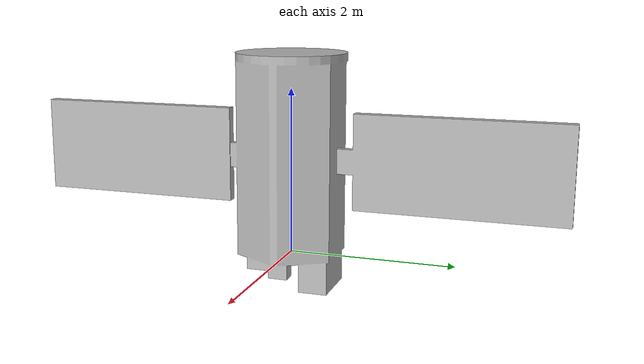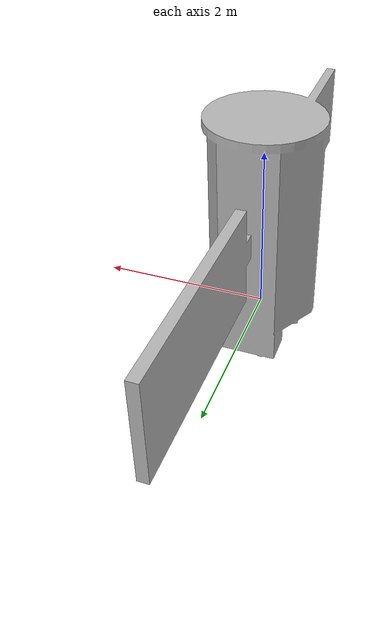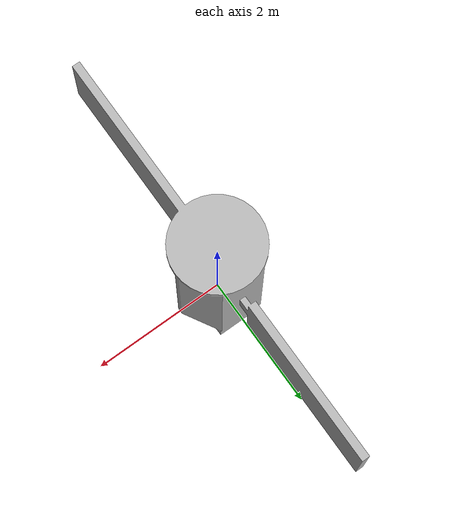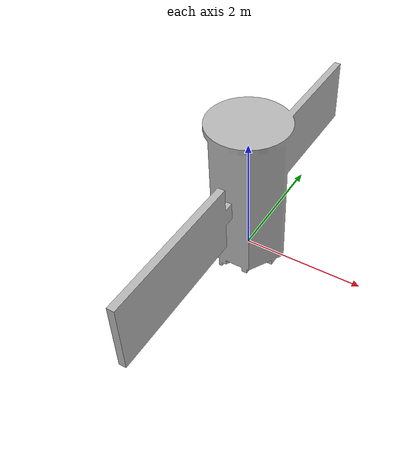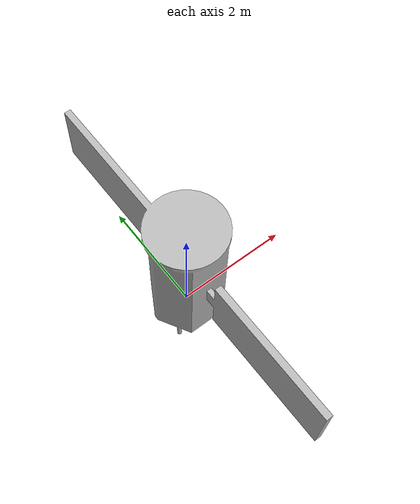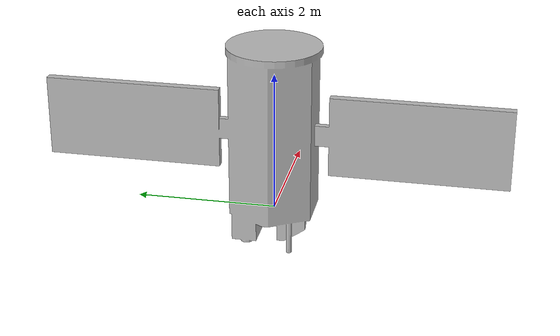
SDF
<?xml version="1.0" ?>
<sdf version="1.6">
  <world name="default">

    <physics type="ode">
      <max_step_size>0.001</max_step_size>
      <gravity>0 0 0</gravity>
      <real_time_update_rate>1000</real_time_update_rate>
    </physics>

    <include>
      <uri>model://sun</uri>
    </include>

    <model name="KOMPSAT">
      <static>true</static>
      <pose>0 0 0 0 0 0</pose>

      <link name="body">
        <visual name="visual">
          <geometry>
            <mesh>
              <uri>/home/smrl/3d_lidar_ws/src/kompsat_model/src/meshes/KOMPSAT.stl</uri>
            </mesh>
          </geometry>
        </visual>

        <collision name="collision">
          <geometry>
            <box>
              <size>1 1 0.5</size>
            </box>
          </geometry>
        </collision>
      </link>

      <link name="lidar_base">
        <!-- Offset the base by half the lenght of the cylinder -->
        <pose>0 0 0 0 0 0</pose>
        <inertial>
          <mass>1.2</mass>
          <inertia>
            <ixx>0.001087473</ixx>
            <iyy>0.001087473</iyy>
            <izz>0.001092437</izz>
            <ixy>0</ixy>
            <ixz>0</ixz>
            <iyz>0</iyz>
          </inertia>
        </inertial>
        <collision name="base_collision">
          <geometry>
            <cylinder>
              <!-- Radius and length provided by Velodyne -->
              <radius>.04267</radius>
              <length>.05867</length>
            </cylinder>
          </geometry>
        </collision>

        <!-- The visual is mostly a copy of the collision -->
        <visual name="base_visual">
          <geometry>
            <cylinder>
              <radius>.04267</radius>
              <length>.05867</length>
            </cylinder>
          </geometry>
        </visual>
      </link>

      <link name="lidar_top">
        <pose>0 0 0.03 0 0 0</pose>
        <inertial>
          <mass>0.1</mass>
          <inertia>
            <ixx>0.000090623</ixx>
            <iyy>0.000090623</iyy>
            <izz>0.000091036</izz>
            <ixy>0</ixy>
            <ixz>0</ixz>
            <iyz>0</iyz>
          </inertia>
        </inertial>
        <collision name="lidar_top_collision">
          <geometry>
            <cylinder>
              <!-- Radius and length provided by Velodyne -->
              <radius>0.04267</radius>
              <length>0.07357</length>
            </cylinder>
          </geometry>
        </collision>

        <!-- The visual is mostly a copy of the collision -->
        <visual name="top_visual">
          <geometry>
            <cylinder>
              <radius>0.04267</radius>
              <length>0.07357</length>
            </cylinder>
          </geometry>
        </visual>

        <!--Add a ray sensor, and give it a name -->
        <sensor type="ray" name="sensor">

          <pose>0 0 2.03 0 0 0</pose>

          <!--Enable visualization to see the rays in the GUI -->
          <visualize>true</visualize>

          <!--Set the update rate of the sensor-->
          <update_rate>30</update_rate>
          <ray>
            <!--The scan element contains the horizontal and vertical beams. We are leaving out the vertical beams for this tutorial. -->
            <scan>
              <!--The horizontal beams-->
              <horizontal>
                <!--The velodyne has 16 beams(vlp-16)-->
                <samples>360</samples>
                <!--Resolution is multipled by samples to determine number of simulated beams vs interpolated beams. See: http://sdformat.org/spec?ver=1.6&elem=sensor#horizontal_resolution-->
                <resolution>1</resolution>

                <!--Minimum angle in radians-->
                <min_angle>-3.14</min_angle>
                <!--Maximum angle in radians-->
                <max_angle>3.14</max_angle>
              </horizontal>

              <!--add vertical scan-->
              <vertical>
                <samples>180</samples>
                <resolution>1</resolution>
                <min_angle>1.57</min_angle>
                <max_angle>2.09</max_angle>
              </vertical>
            </scan>

            <!--Range defines characteristics of an individual beam-->
            <range>
              <!--minimum distance of the beam-->
              <min>0.5</min>
              <!--maximum distance of the beam-->
              <max>60</max>
              <!--linear resolution of the beam-->
              <resolution>0.02</resolution>
            </range>
          </ray>

          <plugin name="velodyne_laser" filename="libgazebo_ros_velodyne_laser.so">
            <ros>
              <namespace>/velodyne</namespace>
              <remapping>scan:=/velodyne_points</remapping>
            </ros>

            <topicName>/velodyne_points</topicName>
            <frameName>lidar_link</frameName>
          </plugin>

        </sensor>
      </link>

      <joint name="sensor_joint" type="fixed">
        <origin xyz="0 0 0" rpy="0 0 0"/>
        <parent link="body"/>
        <child link="lidar_base"/>
        <axis xyz="0 0 0"/>
      </joint>

      <joint name="inner_sensor_joint" type="fixed">
        <origin xyz="0 0 0" rpy="0 0 0"/>
        <parent link="lidar_base"/>
        <child link="lidar_top"/>
        <axis xyz="0 0 0"/>
      </joint>

    </model>
  </world>
</sdf>
